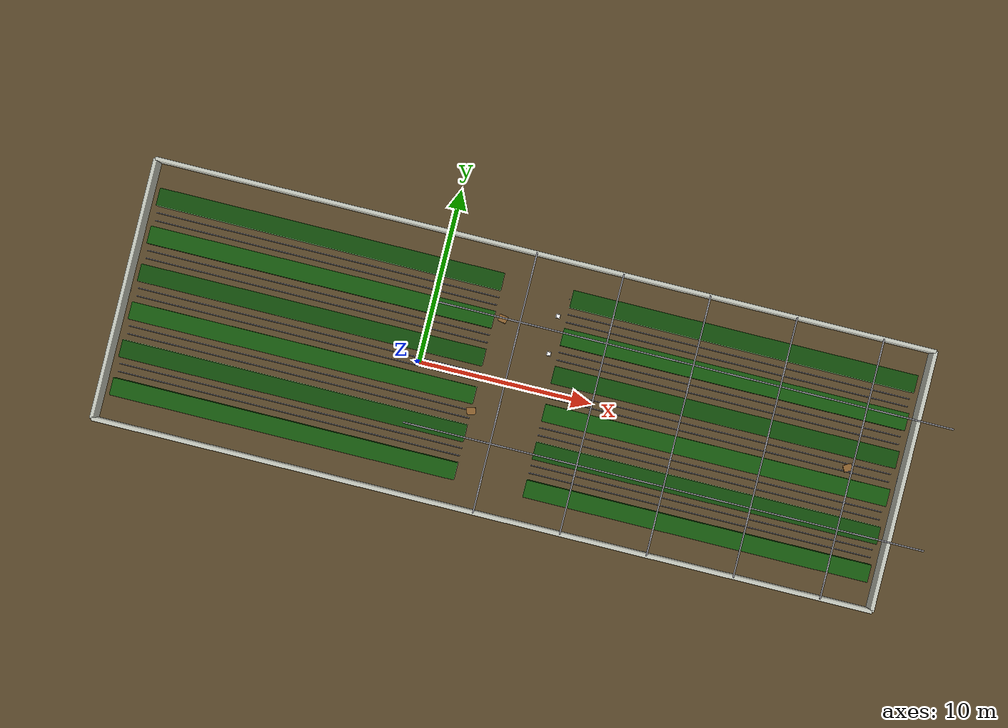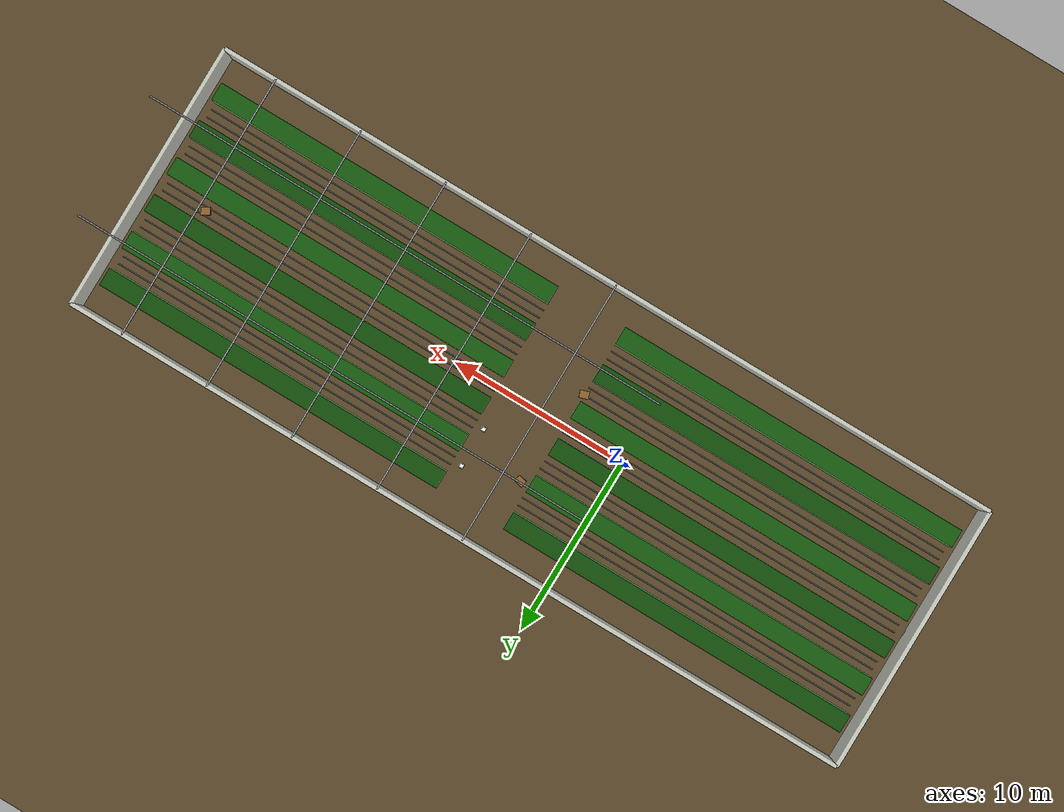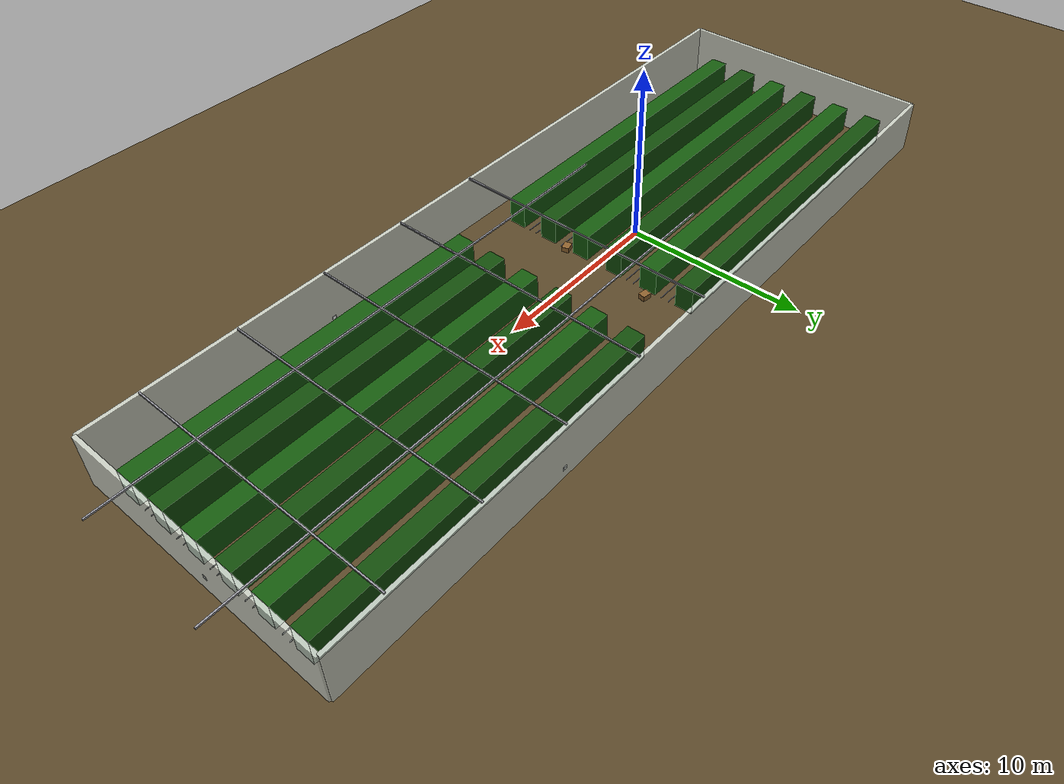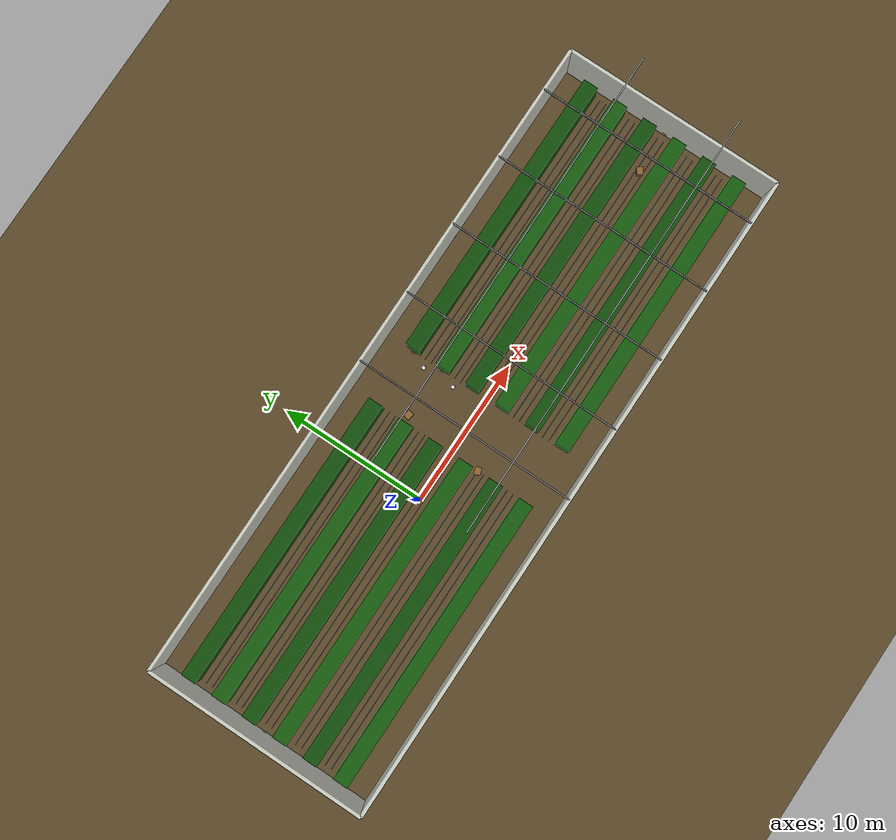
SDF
<sdf version="1.9">
 <world name="greenhouse_simple">
  <plugin filename="gz-sim-physics-system" name="gz::sim::systems::Physics"/>
  <plugin filename="gz-sim-user-commands-system" name="gz::sim::systems::UserCommands"/>
  <plugin filename="gz-sim-scene-broadcaster-system" name="gz::sim::systems::SceneBroadcaster"/>
  <plugin filename="gz-sim-sensors-system" name="gz::sim::systems::Sensors">
   <render_engine>ogre2</render_engine>
  </plugin>
  <plugin filename="gz-sim-imu-system" name="gz::sim::systems::Imu"/>
  <plugin filename="gz-sim-contact-system" name="gz::sim::systems::Contact"/>
  <physics name="default" type="dart">
   <max_step_size>0.004</max_step_size>
   <real_time_factor>1.0</real_time_factor>
   <real_time_update_rate>250</real_time_update_rate>
  </physics>
  <light type="directional" name="sun">
   <cast_shadows>false</cast_shadows>
   <pose>0 0 10 0 0 0</pose>
   <diffuse>1.0 1.0 0.95 1</diffuse>
   <specular>0.3 0.3 0.3 1</specular>
   <attenuation>
    <range>1000</range>
    <constant>0.9</constant>
    <linear>0.01</linear>
    <quadratic>0.001</quadratic>
   </attenuation>
   <direction>-0.5 0.1 -0.9</direction>
  </light>
  <light type="directional" name="fill">
   <cast_shadows>false</cast_shadows>
   <pose>0 0 10 0 0 0</pose>
   <diffuse>0.4 0.4 0.45 1</diffuse>
   <specular>0.05 0.05 0.05 1</specular>
   <direction>0.5 -0.3 -0.7</direction>
  </light>
  <light type="directional" name="ambient_bounce">
   <cast_shadows>false</cast_shadows>
   <pose>0 0 10 0 0 0</pose>
   <diffuse>0.25 0.25 0.25 1</diffuse>
   <specular>0.0 0.0 0.0 1</specular>
   <direction>0.0 0.0 -1.0</direction>
  </light>
  <model name="ground_plane">
   <static>true</static>
   <pose>5.5 0 0 0 0 0</pose>
   <link name="ground_link">
    <collision name="ground_collision">
     <geometry><plane><normal>0 0 1</normal><size>49 19</size></plane></geometry>
    </collision>
    <visual name="ground_visual">
     <geometry><plane><normal>0 0 1</normal><size>49 19</size></plane></geometry>
     <material>
      <ambient>0.25 0.2 0.12 1</ambient>
      <diffuse>0.35 0.28 0.16 1</diffuse>
      <specular>0.05 0.04 0.03 1</specular>
      <pbr>
       <metal>
        <albedo_map>model://textures/ground_soil.png</albedo_map>
        <metalness>0.0</metalness>
        <roughness>0.95</roughness>
       </metal>
      </pbr>
     </material>
    </visual>
   </link>
  </model>
  <model name="wall_north">
   <static>true</static>
   <pose>5.5 7.5 1.5 0 0 0</pose>
   <link name="wall_link">
    <collision name="col"><geometry><box><size>45.0 0.2 3.0</size></box></geometry></collision>
    <visual name="vis">
     <geometry><box><size>45.0 0.2 3.0</size></box></geometry>
     <material>
      <ambient>0.85 0.88 0.85 0.85</ambient>
      <diffuse>0.9 0.93 0.9 0.85</diffuse>
      <specular>0.1 0.1 0.1 1</specular>
      <pbr>
       <metal>
        <albedo_map>model://textures/wall_polycarbonate.png</albedo_map>
        <metalness>0.0</metalness>
        <roughness>0.85</roughness>
       </metal>
      </pbr>
     </material>
    </visual>
   </link>
  </model>
  <model name="wall_south">
   <static>true</static>
   <pose>5.5 -7.5 1.5 0 0 0</pose>
   <link name="wall_link">
    <collision name="col"><geometry><box><size>45.0 0.2 3.0</size></box></geometry></collision>
    <visual name="vis">
     <geometry><box><size>45.0 0.2 3.0</size></box></geometry>
     <material>
      <ambient>0.85 0.88 0.85 0.85</ambient>
      <diffuse>0.9 0.93 0.9 0.85</diffuse>
      <specular>0.1 0.1 0.1 1</specular>
      <pbr>
       <metal>
        <albedo_map>model://textures/wall_polycarbonate.png</albedo_map>
        <metalness>0.0</metalness>
        <roughness>0.85</roughness>
       </metal>
      </pbr>
     </material>
    </visual>
   </link>
  </model>
  <model name="wall_west">
   <static>true</static>
   <pose>-17.0 0 1.5 0 0 0</pose>
   <link name="wall_link">
    <collision name="col"><geometry><box><size>0.2 15 3.0</size></box></geometry></collision>
    <visual name="vis">
     <geometry><box><size>0.2 15 3.0</size></box></geometry>
     <material>
      <ambient>0.85 0.88 0.85 0.85</ambient>
      <diffuse>0.9 0.93 0.9 0.85</diffuse>
      <specular>0.1 0.1 0.1 1</specular>
      <pbr>
       <metal>
        <albedo_map>model://textures/wall_polycarbonate.png</albedo_map>
        <metalness>0.0</metalness>
        <roughness>0.85</roughness>
       </metal>
      </pbr>
     </material>
    </visual>
   </link>
  </model>
  <model name="wall_east">
   <static>true</static>
   <pose>28.0 0 1.5 0 0 0</pose>
   <link name="wall_link">
    <collision name="col"><geometry><box><size>0.2 15 3.0</size></box></geometry></collision>
    <visual name="vis">
     <geometry><box><size>0.2 15 3.0</size></box></geometry>
     <material>
      <ambient>0.85 0.88 0.85 0.85</ambient>
      <diffuse>0.9 0.93 0.9 0.85</diffuse>
      <specular>0.1 0.1 0.1 1</specular>
      <pbr>
       <metal>
        <albedo_map>model://textures/wall_polycarbonate.png</albedo_map>
        <metalness>0.0</metalness>
        <roughness>0.85</roughness>
       </metal>
      </pbr>
     </material>
    </visual>
   </link>
  </model>
  <model name="roof_beam_t1">
   <static>true</static>
   <pose>5 0 3.0 0 0 0</pose>
   <link name="beam_link">
    <visual name="vis">
     <geometry><box><size>0.08 15 0.08</size></box></geometry>
     <material>
      <ambient>0.5 0.5 0.52 1</ambient>
      <diffuse>0.6 0.6 0.63 1</diffuse>
      <specular>0.15 0.15 0.15 1</specular>
      <pbr><metal><metalness>0.2</metalness><roughness>0.7</roughness></metal></pbr>
     </material>
    </visual>
   </link>
  </model>
  <model name="roof_beam_t2">
   <static>true</static>
   <pose>10 0 3.0 0 0 0</pose>
   <link name="beam_link">
    <visual name="vis">
     <geometry><box><size>0.08 15 0.08</size></box></geometry>
     <material>
      <ambient>0.5 0.5 0.52 1</ambient>
      <diffuse>0.6 0.6 0.63 1</diffuse>
      <specular>0.15 0.15 0.15 1</specular>
      <pbr><metal><metalness>0.2</metalness><roughness>0.7</roughness></metal></pbr>
     </material>
    </visual>
   </link>
  </model>
  <model name="roof_beam_t3">
   <static>true</static>
   <pose>15 0 3.0 0 0 0</pose>
   <link name="beam_link">
    <visual name="vis">
     <geometry><box><size>0.08 15 0.08</size></box></geometry>
     <material>
      <ambient>0.5 0.5 0.52 1</ambient>
      <diffuse>0.6 0.6 0.63 1</diffuse>
      <specular>0.15 0.15 0.15 1</specular>
      <pbr><metal><metalness>0.2</metalness><roughness>0.7</roughness></metal></pbr>
     </material>
    </visual>
   </link>
  </model>
  <model name="roof_beam_t4">
   <static>true</static>
   <pose>20 0 3.0 0 0 0</pose>
   <link name="beam_link">
    <visual name="vis">
     <geometry><box><size>0.08 15 0.08</size></box></geometry>
     <material>
      <ambient>0.5 0.5 0.52 1</ambient>
      <diffuse>0.6 0.6 0.63 1</diffuse>
      <specular>0.15 0.15 0.15 1</specular>
      <pbr><metal><metalness>0.2</metalness><roughness>0.7</roughness></metal></pbr>
     </material>
    </visual>
   </link>
  </model>
  <model name="roof_beam_t5">
   <static>true</static>
   <pose>25 0 3.0 0 0 0</pose>
   <link name="beam_link">
    <visual name="vis">
     <geometry><box><size>0.08 15 0.08</size></box></geometry>
     <material>
      <ambient>0.5 0.5 0.52 1</ambient>
      <diffuse>0.6 0.6 0.63 1</diffuse>
      <specular>0.15 0.15 0.15 1</specular>
      <pbr><metal><metalness>0.2</metalness><roughness>0.7</roughness></metal></pbr>
     </material>
    </visual>
   </link>
  </model>
  <model name="roof_beam_l1">
   <static>true</static>
   <pose>15 -3.5 3.0 0 0 0</pose>
   <link name="beam_link">
    <visual name="vis">
     <geometry><box><size>30 0.08 0.08</size></box></geometry>
     <material>
      <ambient>0.5 0.5 0.52 1</ambient>
      <diffuse>0.6 0.6 0.63 1</diffuse>
      <specular>0.15 0.15 0.15 1</specular>
      <pbr><metal><metalness>0.2</metalness><roughness>0.7</roughness></metal></pbr>
     </material>
    </visual>
   </link>
  </model>
  <model name="roof_beam_l2">
   <static>true</static>
   <pose>15 3.5 3.0 0 0 0</pose>
   <link name="beam_link">
    <visual name="vis">
     <geometry><box><size>30 0.08 0.08</size></box></geometry>
     <material>
      <ambient>0.5 0.5 0.52 1</ambient>
      <diffuse>0.6 0.6 0.63 1</diffuse>
      <specular>0.15 0.15 0.15 1</specular>
      <pbr><metal><metalness>0.2</metalness><roughness>0.7</roughness></metal></pbr>
     </material>
    </visual>
   </link>
  </model>
  <model name="crop_row_1">
   <static>true</static>
   <pose>17.5 -5.5 0.75 0 0 0</pose>
   <link name="row_link">
    <collision name="col"><geometry><box><size>20 1.0 1.5</size></box></geometry></collision>
    <visual name="vis">
     <geometry><box><size>20 1.0 1.5</size></box></geometry>
     <material>
      <ambient>0.05 0.25 0.03 1</ambient>
      <diffuse>0.08 0.35 0.05 1</diffuse>
      <specular>0.02 0.05 0.02 1</specular>
      <pbr>
       <metal>
        <albedo_map>model://textures/crop_leaves.png</albedo_map>
        <metalness>0.0</metalness>
        <roughness>0.88</roughness>
       </metal>
      </pbr>
     </material>
    </visual>
   </link>
  </model>
  <model name="crop_row_2">
   <static>true</static>
   <pose>17.5 -3.3 0.75 0 0 0</pose>
   <link name="row_link">
    <collision name="col"><geometry><box><size>20 1.0 1.5</size></box></geometry></collision>
    <visual name="vis">
     <geometry><box><size>20 1.0 1.5</size></box></geometry>
     <material>
      <ambient>0.04 0.22 0.03 1</ambient>
      <diffuse>0.07 0.30 0.04 1</diffuse>
      <specular>0.02 0.04 0.02 1</specular>
      <pbr>
       <metal>
        <albedo_map>model://textures/crop_leaves_alt.png</albedo_map>
        <metalness>0.0</metalness>
        <roughness>0.90</roughness>
       </metal>
      </pbr>
     </material>
    </visual>
   </link>
  </model>
  <model name="crop_row_3">
   <static>true</static>
   <pose>17.5 -1.1 0.75 0 0 0</pose>
   <link name="row_link">
    <collision name="col"><geometry><box><size>20 1.0 1.5</size></box></geometry></collision>
    <visual name="vis">
     <geometry><box><size>20 1.0 1.5</size></box></geometry>
     <material>
      <ambient>0.05 0.25 0.03 1</ambient>
      <diffuse>0.08 0.35 0.05 1</diffuse>
      <specular>0.02 0.05 0.02 1</specular>
      <pbr>
       <metal>
        <albedo_map>model://textures/crop_leaves.png</albedo_map>
        <metalness>0.0</metalness>
        <roughness>0.88</roughness>
       </metal>
      </pbr>
     </material>
    </visual>
   </link>
  </model>
  <model name="crop_row_4">
   <static>true</static>
   <pose>17.5 1.1 0.75 0 0 0</pose>
   <link name="row_link">
    <collision name="col"><geometry><box><size>20 1.0 1.5</size></box></geometry></collision>
    <visual name="vis">
     <geometry><box><size>20 1.0 1.5</size></box></geometry>
     <material>
      <ambient>0.04 0.22 0.03 1</ambient>
      <diffuse>0.07 0.30 0.04 1</diffuse>
      <specular>0.02 0.04 0.02 1</specular>
      <pbr>
       <metal>
        <albedo_map>model://textures/crop_leaves_alt.png</albedo_map>
        <metalness>0.0</metalness>
        <roughness>0.90</roughness>
       </metal>
      </pbr>
     </material>
    </visual>
   </link>
  </model>
  <model name="crop_row_5">
   <static>true</static>
   <pose>17.5 3.3 0.75 0 0 0</pose>
   <link name="row_link">
    <collision name="col"><geometry><box><size>20 1.0 1.5</size></box></geometry></collision>
    <visual name="vis">
     <geometry><box><size>20 1.0 1.5</size></box></geometry>
     <material>
      <ambient>0.05 0.25 0.03 1</ambient>
      <diffuse>0.08 0.35 0.05 1</diffuse>
      <specular>0.02 0.05 0.02 1</specular>
      <pbr>
       <metal>
        <albedo_map>model://textures/crop_leaves.png</albedo_map>
        <metalness>0.0</metalness>
        <roughness>0.88</roughness>
       </metal>
      </pbr>
     </material>
    </visual>
   </link>
  </model>
  <model name="crop_row_6">
   <static>true</static>
   <pose>17.5 5.5 0.75 0 0 0</pose>
   <link name="row_link">
    <collision name="col"><geometry><box><size>20 1.0 1.5</size></box></geometry></collision>
    <visual name="vis">
     <geometry><box><size>20 1.0 1.5</size></box></geometry>
     <material>
      <ambient>0.04 0.22 0.03 1</ambient>
      <diffuse>0.07 0.30 0.04 1</diffuse>
      <specular>0.02 0.04 0.02 1</specular>
      <pbr>
       <metal>
        <albedo_map>model://textures/crop_leaves_alt.png</albedo_map>
        <metalness>0.0</metalness>
        <roughness>0.90</roughness>
       </metal>
      </pbr>
     </material>
    </visual>
   </link>
  </model>
  <model name="crop_row_r1">
   <static>true</static>
   <pose>-6.5 -5.5 0.75 0 0 0</pose>
   <link name="row_link">
    <collision name="col"><geometry><box><size>20 1.0 1.5</size></box></geometry></collision>
    <visual name="vis">
     <geometry><box><size>20 1.0 1.5</size></box></geometry>
     <material>
      <ambient>0.05 0.25 0.03 1</ambient>
      <diffuse>0.08 0.35 0.05 1</diffuse>
      <specular>0.02 0.05 0.02 1</specular>
      <pbr>
       <metal>
        <albedo_map>model://textures/crop_leaves.png</albedo_map>
        <metalness>0.0</metalness>
        <roughness>0.88</roughness>
       </metal>
      </pbr>
     </material>
    </visual>
   </link>
  </model>
  <model name="crop_row_r2">
   <static>true</static>
   <pose>-6.5 -3.3 0.75 0 0 0</pose>
   <link name="row_link">
    <collision name="col"><geometry><box><size>20 1.0 1.5</size></box></geometry></collision>
    <visual name="vis">
     <geometry><box><size>20 1.0 1.5</size></box></geometry>
     <material>
      <ambient>0.04 0.22 0.03 1</ambient>
      <diffuse>0.07 0.30 0.04 1</diffuse>
      <specular>0.02 0.04 0.02 1</specular>
      <pbr>
       <metal>
        <albedo_map>model://textures/crop_leaves_alt.png</albedo_map>
        <metalness>0.0</metalness>
        <roughness>0.90</roughness>
       </metal>
      </pbr>
     </material>
    </visual>
   </link>
  </model>
  <model name="crop_row_r3">
   <static>true</static>
   <pose>-6.5 -1.1 0.75 0 0 0</pose>
   <link name="row_link">
    <collision name="col"><geometry><box><size>20 1.0 1.5</size></box></geometry></collision>
    <visual name="vis">
     <geometry><box><size>20 1.0 1.5</size></box></geometry>
     <material>
      <ambient>0.05 0.25 0.03 1</ambient>
      <diffuse>0.08 0.35 0.05 1</diffuse>
      <specular>0.02 0.05 0.02 1</specular>
      <pbr>
       <metal>
        <albedo_map>model://textures/crop_leaves.png</albedo_map>
        <metalness>0.0</metalness>
        <roughness>0.88</roughness>
       </metal>
      </pbr>
     </material>
    </visual>
   </link>
  </model>
  <model name="crop_row_r4">
   <static>true</static>
   <pose>-6.5 1.1 0.75 0 0 0</pose>
   <link name="row_link">
    <collision name="col"><geometry><box><size>20 1.0 1.5</size></box></geometry></collision>
    <visual name="vis">
     <geometry><box><size>20 1.0 1.5</size></box></geometry>
     <material>
      <ambient>0.04 0.22 0.03 1</ambient>
      <diffuse>0.07 0.30 0.04 1</diffuse>
      <specular>0.02 0.04 0.02 1</specular>
      <pbr>
       <metal>
        <albedo_map>model://textures/crop_leaves_alt.png</albedo_map>
        <metalness>0.0</metalness>
        <roughness>0.90</roughness>
       </metal>
      </pbr>
     </material>
    </visual>
   </link>
  </model>
  <model name="crop_row_r5">
   <static>true</static>
   <pose>-6.5 3.3 0.75 0 0 0</pose>
   <link name="row_link">
    <collision name="col"><geometry><box><size>20 1.0 1.5</size></box></geometry></collision>
    <visual name="vis">
     <geometry><box><size>20 1.0 1.5</size></box></geometry>
     <material>
      <ambient>0.05 0.25 0.03 1</ambient>
      <diffuse>0.08 0.35 0.05 1</diffuse>
      <specular>0.02 0.05 0.02 1</specular>
      <pbr>
       <metal>
        <albedo_map>model://textures/crop_leaves.png</albedo_map>
        <metalness>0.0</metalness>
        <roughness>0.88</roughness>
       </metal>
      </pbr>
     </material>
    </visual>
   </link>
  </model>
  <model name="crop_row_r6">
   <static>true</static>
   <pose>-6.5 5.5 0.75 0 0 0</pose>
   <link name="row_link">
    <collision name="col"><geometry><box><size>20 1.0 1.5</size></box></geometry></collision>
    <visual name="vis">
     <geometry><box><size>20 1.0 1.5</size></box></geometry>
     <material>
      <ambient>0.04 0.22 0.03 1</ambient>
      <diffuse>0.07 0.30 0.04 1</diffuse>
      <specular>0.02 0.04 0.02 1</specular>
      <pbr>
       <metal>
        <albedo_map>model://textures/crop_leaves_alt.png</albedo_map>
        <metalness>0.0</metalness>
        <roughness>0.90</roughness>
       </metal>
      </pbr>
     </material>
    </visual>
   </link>
  </model>
  <model name="crate_1">
   <static>true</static>
   <pose>3.5 -2.0 0.15 0 0 0.3</pose>
   <link name="crate_link">
    <collision name="col"><geometry><box><size>0.5 0.4 0.3</size></box></geometry></collision>
    <visual name="vis">
     <geometry><box><size>0.5 0.4 0.3</size></box></geometry>
     <material>
      <ambient>0.4 0.28 0.12 1</ambient>
      <diffuse>0.55 0.38 0.18 1</diffuse>
      <specular>0.1 0.08 0.05 1</specular>
      <pbr>
       <metal>
        <albedo_map>model://textures/crate_wood.png</albedo_map>
        <metalness>0.0</metalness>
        <roughness>0.85</roughness>
       </metal>
      </pbr>
     </material>
    </visual>
   </link>
  </model>
  <model name="crate_2">
   <static>true</static>
   <pose>4.0 3.5 0.15 0 0 -0.2</pose>
   <link name="crate_link">
    <collision name="col"><geometry><box><size>0.5 0.4 0.3</size></box></geometry></collision>
    <visual name="vis">
     <geometry><box><size>0.5 0.4 0.3</size></box></geometry>
     <material>
      <ambient>0.4 0.28 0.12 1</ambient>
      <diffuse>0.55 0.38 0.18 1</diffuse>
      <specular>0.1 0.08 0.05 1</specular>
      <pbr>
       <metal>
        <albedo_map>model://textures/crate_wood.png</albedo_map>
        <metalness>0.0</metalness>
        <roughness>0.85</roughness>
       </metal>
      </pbr>
     </material>
    </visual>
   </link>
  </model>
  <model name="crate_3">
   <static>true</static>
   <pose>25.0 0.0 0.15 0 0 0.5</pose>
   <link name="crate_link">
    <collision name="col"><geometry><box><size>0.5 0.4 0.3</size></box></geometry></collision>
    <visual name="vis">
     <geometry><box><size>0.5 0.4 0.3</size></box></geometry>
     <material>
      <ambient>0.4 0.28 0.12 1</ambient>
      <diffuse>0.55 0.38 0.18 1</diffuse>
      <specular>0.1 0.08 0.05 1</specular>
      <pbr>
       <metal>
        <albedo_map>model://textures/crate_wood.png</albedo_map>
        <metalness>0.0</metalness>
        <roughness>0.85</roughness>
       </metal>
      </pbr>
     </material>
    </visual>
   </link>
  </model>
  <model name="heating_rail_1_2_left">
   <static>true</static>
   <pose>17.5 -4.625 0.0255 0 1.5708 0</pose>
   <link name="rail_link">
    <collision name="col">
     <geometry><cylinder><radius>0.0255</radius><length>20.0</length></cylinder></geometry>
    </collision>
    <visual name="vis">
     <geometry><cylinder><radius>0.0255</radius><length>20.0</length></cylinder></geometry>
     <material>
      <ambient>0.55 0.55 0.58 1</ambient>
      <diffuse>0.65 0.65 0.70 1</diffuse>
      <specular>0.2 0.2 0.2 1</specular>
      <pbr>
       <metal>
        <albedo_map>model://textures/rail_steel.png</albedo_map>
        <metalness>0.3</metalness>
        <roughness>0.65</roughness>
       </metal>
      </pbr>
     </material>
    </visual>
   </link>
  </model>
  <model name="heating_rail_1_2_right">
   <static>true</static>
   <pose>17.5 -4.175 0.0255 0 1.5708 0</pose>
   <link name="rail_link">
    <collision name="col">
     <geometry><cylinder><radius>0.0255</radius><length>20.0</length></cylinder></geometry>
    </collision>
    <visual name="vis">
     <geometry><cylinder><radius>0.0255</radius><length>20.0</length></cylinder></geometry>
     <material>
      <ambient>0.55 0.55 0.58 1</ambient>
      <diffuse>0.65 0.65 0.70 1</diffuse>
      <specular>0.2 0.2 0.2 1</specular>
      <pbr>
       <metal>
        <albedo_map>model://textures/rail_steel.png</albedo_map>
        <metalness>0.3</metalness>
        <roughness>0.65</roughness>
       </metal>
      </pbr>
     </material>
    </visual>
   </link>
  </model>
  <model name="heating_rail_2_3_left">
   <static>true</static>
   <pose>17.5 -2.425 0.0255 0 1.5708 0</pose>
   <link name="rail_link">
    <collision name="col">
     <geometry><cylinder><radius>0.0255</radius><length>20.0</length></cylinder></geometry>
    </collision>
    <visual name="vis">
     <geometry><cylinder><radius>0.0255</radius><length>20.0</length></cylinder></geometry>
     <material>
      <ambient>0.55 0.55 0.58 1</ambient>
      <diffuse>0.65 0.65 0.70 1</diffuse>
      <specular>0.2 0.2 0.2 1</specular>
      <pbr>
       <metal>
        <albedo_map>model://textures/rail_steel.png</albedo_map>
        <metalness>0.3</metalness>
        <roughness>0.65</roughness>
       </metal>
      </pbr>
     </material>
    </visual>
   </link>
  </model>
  <model name="heating_rail_2_3_right">
   <static>true</static>
   <pose>17.5 -1.975 0.0255 0 1.5708 0</pose>
   <link name="rail_link">
    <collision name="col">
     <geometry><cylinder><radius>0.0255</radius><length>20.0</length></cylinder></geometry>
    </collision>
    <visual name="vis">
     <geometry><cylinder><radius>0.0255</radius><length>20.0</length></cylinder></geometry>
     <material>
      <ambient>0.55 0.55 0.58 1</ambient>
      <diffuse>0.65 0.65 0.70 1</diffuse>
      <specular>0.2 0.2 0.2 1</specular>
      <pbr>
       <metal>
        <albedo_map>model://textures/rail_steel.png</albedo_map>
        <metalness>0.3</metalness>
        <roughness>0.65</roughness>
       </metal>
      </pbr>
     </material>
    </visual>
   </link>
  </model>
  <model name="heating_rail_3_4_left">
   <static>true</static>
   <pose>17.5 -0.225 0.0255 0 1.5708 0</pose>
   <link name="rail_link">
    <collision name="col">
     <geometry><cylinder><radius>0.0255</radius><length>20.0</length></cylinder></geometry>
    </collision>
    <visual name="vis">
     <geometry><cylinder><radius>0.0255</radius><length>20.0</length></cylinder></geometry>
     <material>
      <ambient>0.55 0.55 0.58 1</ambient>
      <diffuse>0.65 0.65 0.70 1</diffuse>
      <specular>0.2 0.2 0.2 1</specular>
      <pbr>
       <metal>
        <albedo_map>model://textures/rail_steel.png</albedo_map>
        <metalness>0.3</metalness>
        <roughness>0.65</roughness>
       </metal>
      </pbr>
     </material>
    </visual>
   </link>
  </model>
  <model name="heating_rail_3_4_right">
   <static>true</static>
   <pose>17.5 0.225 0.0255 0 1.5708 0</pose>
   <link name="rail_link">
    <collision name="col">
     <geometry><cylinder><radius>0.0255</radius><length>20.0</length></cylinder></geometry>
    </collision>
    <visual name="vis">
     <geometry><cylinder><radius>0.0255</radius><length>20.0</length></cylinder></geometry>
     <material>
      <ambient>0.55 0.55 0.58 1</ambient>
      <diffuse>0.65 0.65 0.70 1</diffuse>
      <specular>0.2 0.2 0.2 1</specular>
      <pbr>
       <metal>
        <albedo_map>model://textures/rail_steel.png</albedo_map>
        <metalness>0.3</metalness>
        <roughness>0.65</roughness>
       </metal>
      </pbr>
     </material>
    </visual>
   </link>
  </model>
  <model name="heating_rail_4_5_left">
   <static>true</static>
   <pose>17.5 1.975 0.0255 0 1.5708 0</pose>
   <link name="rail_link">
    <collision name="col">
     <geometry><cylinder><radius>0.0255</radius><length>20.0</length></cylinder></geometry>
    </collision>
    <visual name="vis">
     <geometry><cylinder><radius>0.0255</radius><length>20.0</length></cylinder></geometry>
     <material>
      <ambient>0.55 0.55 0.58 1</ambient>
      <diffuse>0.65 0.65 0.70 1</diffuse>
      <specular>0.2 0.2 0.2 1</specular>
      <pbr>
       <metal>
        <albedo_map>model://textures/rail_steel.png</albedo_map>
        <metalness>0.3</metalness>
        <roughness>0.65</roughness>
       </metal>
      </pbr>
     </material>
    </visual>
   </link>
  </model>
  <model name="heating_rail_4_5_right">
   <static>true</static>
   <pose>17.5 2.425 0.0255 0 1.5708 0</pose>
   <link name="rail_link">
    <collision name="col">
     <geometry><cylinder><radius>0.0255</radius><length>20.0</length></cylinder></geometry>
    </collision>
    <visual name="vis">
     <geometry><cylinder><radius>0.0255</radius><length>20.0</length></cylinder></geometry>
     <material>
      <ambient>0.55 0.55 0.58 1</ambient>
      <diffuse>0.65 0.65 0.70 1</diffuse>
      <specular>0.2 0.2 0.2 1</specular>
      <pbr>
       <metal>
        <albedo_map>model://textures/rail_steel.png</albedo_map>
        <metalness>0.3</metalness>
        <roughness>0.65</roughness>
       </metal>
      </pbr>
     </material>
    </visual>
   </link>
  </model>
  <model name="heating_rail_5_6_left">
   <static>true</static>
   <pose>17.5 4.175 0.0255 0 1.5708 0</pose>
   <link name="rail_link">
    <collision name="col">
     <geometry><cylinder><radius>0.0255</radius><length>20.0</length></cylinder></geometry>
    </collision>
    <visual name="vis">
     <geometry><cylinder><radius>0.0255</radius><length>20.0</length></cylinder></geometry>
     <material>
      <ambient>0.55 0.55 0.58 1</ambient>
      <diffuse>0.65 0.65 0.70 1</diffuse>
      <specular>0.2 0.2 0.2 1</specular>
      <pbr>
       <metal>
        <albedo_map>model://textures/rail_steel.png</albedo_map>
        <metalness>0.3</metalness>
        <roughness>0.65</roughness>
       </metal>
      </pbr>
     </material>
    </visual>
   </link>
  </model>
  <model name="heating_rail_5_6_right">
   <static>true</static>
   <pose>17.5 4.625 0.0255 0 1.5708 0</pose>
   <link name="rail_link">
    <collision name="col">
     <geometry><cylinder><radius>0.0255</radius><length>20.0</length></cylinder></geometry>
    </collision>
    <visual name="vis">
     <geometry><cylinder><radius>0.0255</radius><length>20.0</length></cylinder></geometry>
     <material>
      <ambient>0.55 0.55 0.58 1</ambient>
      <diffuse>0.65 0.65 0.70 1</diffuse>
      <specular>0.2 0.2 0.2 1</specular>
      <pbr>
       <metal>
        <albedo_map>model://textures/rail_steel.png</albedo_map>
        <metalness>0.3</metalness>
        <roughness>0.65</roughness>
       </metal>
      </pbr>
     </material>
    </visual>
   </link>
  </model>
  <model name="heating_rail_r1_2_left">
   <static>true</static>
   <pose>-6.5 -4.625 0.0255 0 1.5708 0</pose>
   <link name="rail_link">
    <collision name="col">
     <geometry><cylinder><radius>0.0255</radius><length>20.0</length></cylinder></geometry>
    </collision>
    <visual name="vis">
     <geometry><cylinder><radius>0.0255</radius><length>20.0</length></cylinder></geometry>
     <material>
      <ambient>0.55 0.55 0.58 1</ambient>
      <diffuse>0.65 0.65 0.70 1</diffuse>
      <specular>0.2 0.2 0.2 1</specular>
      <pbr>
       <metal>
        <albedo_map>model://textures/rail_steel.png</albedo_map>
        <metalness>0.3</metalness>
        <roughness>0.65</roughness>
       </metal>
      </pbr>
     </material>
    </visual>
   </link>
  </model>
  <model name="heating_rail_r1_2_right">
   <static>true</static>
   <pose>-6.5 -4.175 0.0255 0 1.5708 0</pose>
   <link name="rail_link">
    <collision name="col">
     <geometry><cylinder><radius>0.0255</radius><length>20.0</length></cylinder></geometry>
    </collision>
    <visual name="vis">
     <geometry><cylinder><radius>0.0255</radius><length>20.0</length></cylinder></geometry>
     <material>
      <ambient>0.55 0.55 0.58 1</ambient>
      <diffuse>0.65 0.65 0.70 1</diffuse>
      <specular>0.2 0.2 0.2 1</specular>
      <pbr>
       <metal>
        <albedo_map>model://textures/rail_steel.png</albedo_map>
        <metalness>0.3</metalness>
        <roughness>0.65</roughness>
       </metal>
      </pbr>
     </material>
    </visual>
   </link>
  </model>
  <model name="heating_rail_r2_3_left">
   <static>true</static>
   <pose>-6.5 -2.425 0.0255 0 1.5708 0</pose>
   <link name="rail_link">
    <collision name="col">
     <geometry><cylinder><radius>0.0255</radius><length>20.0</length></cylinder></geometry>
    </collision>
    <visual name="vis">
     <geometry><cylinder><radius>0.0255</radius><length>20.0</length></cylinder></geometry>
     <material>
      <ambient>0.55 0.55 0.58 1</ambient>
      <diffuse>0.65 0.65 0.70 1</diffuse>
      <specular>0.2 0.2 0.2 1</specular>
      <pbr>
       <metal>
        <albedo_map>model://textures/rail_steel.png</albedo_map>
        <metalness>0.3</metalness>
        <roughness>0.65</roughness>
       </metal>
      </pbr>
     </material>
    </visual>
   </link>
  </model>
  <model name="heating_rail_r2_3_right">
   <static>true</static>
   <pose>-6.5 -1.975 0.0255 0 1.5708 0</pose>
   <link name="rail_link">
    <collision name="col">
     <geometry><cylinder><radius>0.0255</radius><length>20.0</length></cylinder></geometry>
    </collision>
    <visual name="vis">
     <geometry><cylinder><radius>0.0255</radius><length>20.0</length></cylinder></geometry>
     <material>
      <ambient>0.55 0.55 0.58 1</ambient>
      <diffuse>0.65 0.65 0.70 1</diffuse>
      <specular>0.2 0.2 0.2 1</specular>
      <pbr>
       <metal>
        <albedo_map>model://textures/rail_steel.png</albedo_map>
        <metalness>0.3</metalness>
        <roughness>0.65</roughness>
       </metal>
      </pbr>
     </material>
    </visual>
   </link>
  </model>
  <model name="heating_rail_r3_4_left">
   <static>true</static>
   <pose>-6.5 -0.225 0.0255 0 1.5708 0</pose>
   <link name="rail_link">
    <collision name="col">
     <geometry><cylinder><radius>0.0255</radius><length>20.0</length></cylinder></geometry>
    </collision>
    <visual name="vis">
     <geometry><cylinder><radius>0.0255</radius><length>20.0</length></cylinder></geometry>
     <material>
      <ambient>0.55 0.55 0.58 1</ambient>
      <diffuse>0.65 0.65 0.70 1</diffuse>
      <specular>0.2 0.2 0.2 1</specular>
      <pbr>
       <metal>
        <albedo_map>model://textures/rail_steel.png</albedo_map>
        <metalness>0.3</metalness>
        <roughness>0.65</roughness>
       </metal>
      </pbr>
     </material>
    </visual>
   </link>
  </model>
  <model name="heating_rail_r3_4_right">
   <static>true</static>
   <pose>-6.5 0.225 0.0255 0 1.5708 0</pose>
   <link name="rail_link">
    <collision name="col">
     <geometry><cylinder><radius>0.0255</radius><length>20.0</length></cylinder></geometry>
    </collision>
    <visual name="vis">
     <geometry><cylinder><radius>0.0255</radius><length>20.0</length></cylinder></geometry>
     <material>
      <ambient>0.55 0.55 0.58 1</ambient>
      <diffuse>0.65 0.65 0.70 1</diffuse>
      <specular>0.2 0.2 0.2 1</specular>
      <pbr>
       <metal>
        <albedo_map>model://textures/rail_steel.png</albedo_map>
        <metalness>0.3</metalness>
        <roughness>0.65</roughness>
       </metal>
      </pbr>
     </material>
    </visual>
   </link>
  </model>
  <model name="heating_rail_r4_5_left">
   <static>true</static>
   <pose>-6.5 1.975 0.0255 0 1.5708 0</pose>
   <link name="rail_link">
    <collision name="col">
     <geometry><cylinder><radius>0.0255</radius><length>20.0</length></cylinder></geometry>
    </collision>
    <visual name="vis">
     <geometry><cylinder><radius>0.0255</radius><length>20.0</length></cylinder></geometry>
     <material>
      <ambient>0.55 0.55 0.58 1</ambient>
      <diffuse>0.65 0.65 0.70 1</diffuse>
      <specular>0.2 0.2 0.2 1</specular>
      <pbr>
       <metal>
        <albedo_map>model://textures/rail_steel.png</albedo_map>
        <metalness>0.3</metalness>
        <roughness>0.65</roughness>
       </metal>
      </pbr>
     </material>
    </visual>
   </link>
  </model>
  <model name="heating_rail_r4_5_right">
   <static>true</static>
   <pose>-6.5 2.425 0.0255 0 1.5708 0</pose>
   <link name="rail_link">
    <collision name="col">
     <geometry><cylinder><radius>0.0255</radius><length>20.0</length></cylinder></geometry>
    </collision>
    <visual name="vis">
     <geometry><cylinder><radius>0.0255</radius><length>20.0</length></cylinder></geometry>
     <material>
      <ambient>0.55 0.55 0.58 1</ambient>
      <diffuse>0.65 0.65 0.70 1</diffuse>
      <specular>0.2 0.2 0.2 1</specular>
      <pbr>
       <metal>
        <albedo_map>model://textures/rail_steel.png</albedo_map>
        <metalness>0.3</metalness>
        <roughness>0.65</roughness>
       </metal>
      </pbr>
     </material>
    </visual>
   </link>
  </model>
  <model name="heating_rail_r5_6_left">
   <static>true</static>
   <pose>-6.5 4.175 0.0255 0 1.5708 0</pose>
   <link name="rail_link">
    <collision name="col">
     <geometry><cylinder><radius>0.0255</radius><length>20.0</length></cylinder></geometry>
    </collision>
    <visual name="vis">
     <geometry><cylinder><radius>0.0255</radius><length>20.0</length></cylinder></geometry>
     <material>
      <ambient>0.55 0.55 0.58 1</ambient>
      <diffuse>0.65 0.65 0.70 1</diffuse>
      <specular>0.2 0.2 0.2 1</specular>
      <pbr>
       <metal>
        <albedo_map>model://textures/rail_steel.png</albedo_map>
        <metalness>0.3</metalness>
        <roughness>0.65</roughness>
       </metal>
      </pbr>
     </material>
    </visual>
   </link>
  </model>
  <model name="heating_rail_r5_6_right">
   <static>true</static>
   <pose>-6.5 4.625 0.0255 0 1.5708 0</pose>
   <link name="rail_link">
    <collision name="col">
     <geometry><cylinder><radius>0.0255</radius><length>20.0</length></cylinder></geometry>
    </collision>
    <visual name="vis">
     <geometry><cylinder><radius>0.0255</radius><length>20.0</length></cylinder></geometry>
     <material>
      <ambient>0.55 0.55 0.58 1</ambient>
      <diffuse>0.65 0.65 0.70 1</diffuse>
      <specular>0.2 0.2 0.2 1</specular>
      <pbr>
       <metal>
        <albedo_map>model://textures/rail_steel.png</albedo_map>
        <metalness>0.3</metalness>
        <roughness>0.65</roughness>
       </metal>
      </pbr>
     </material>
    </visual>
   </link>
  </model>
  <include>
   <uri>model://apriltag_0</uri>
   <name>apriltag_0</name>
   <pose>-16.88 0.0 0.145 0 1.5708 0</pose>
  </include>
  <include>
   <uri>model://apriltag_1</uri>
   <name>apriltag_1</name>
   <pose>27.88 0.0 0.145 0 -1.5708 0</pose>
  </include>
  <include>
   <uri>model://apriltag_14</uri>
   <name>apriltag_14</name>
   <pose>15.0 7.38 0.145 1.5708 0 0</pose>
  </include>
  <include>
   <uri>model://apriltag_15</uri>
   <name>apriltag_15</name>
   <pose>15.0 -7.38 0.145 -1.5708 0 0</pose>
  </include>
  <include><uri>model://apriltag_12</uri><name>apriltag_12</name><pose>7.0 2.2 0.002 0 0 0</pose></include>
  <include><uri>model://apriltag_13</uri><name>apriltag_13</name><pose>7.0 4.4 0.002 0 0 0</pose></include>
  <include>
   <uri>model://apriltag_10</uri>
   <name>apriltag_10</name>
   <pose>7.4 3.3 0.145 0 -1.5708 0</pose>
  </include>
  <include>
   <uri>model://apriltag_11</uri>
   <name>apriltag_11</name>
   <pose>7.4 5.5 0.145 0 -1.5708 0</pose>
  </include>
 </world>
</sdf>

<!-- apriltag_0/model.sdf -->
<sdf version="1.9">
  <model name="apriltag_0">
    <static>true</static>
    <link name="link">
      <visual name="border_visual">
        <pose>0 0 -0.00025 0 0 0</pose>
        <geometry><box><size>0.25 0.25 0.0005</size></box></geometry>
        <material>
          <ambient>1.0 1.0 1.0 1</ambient>
          <diffuse>1.0 1.0 1.0 1</diffuse>
          <specular>0.1 0.1 0.1 1</specular>
        </material>
      </visual>
      <visual name="tag_visual">
        <geometry><box><size>0.2 0.2 0.001</size></box></geometry>
        <material>
          <diffuse>1 1 1 1</diffuse>
          <pbr><metal>
            <albedo_map>model://apriltag_0/textures/tag36h11_id0.png</albedo_map>
            <metalness>0.0</metalness>
            <roughness>1.0</roughness>
          </metal></pbr>
        </material>
      </visual>
    </link>
  </model>
</sdf>

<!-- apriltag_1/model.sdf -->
<sdf version="1.9">
  <model name="apriltag_1">
    <static>true</static>
    <link name="link">
      <visual name="border_visual">
        <pose>0 0 -0.00025 0 0 0</pose>
        <geometry><box><size>0.25 0.25 0.0005</size></box></geometry>
        <material>
          <ambient>1.0 1.0 1.0 1</ambient>
          <diffuse>1.0 1.0 1.0 1</diffuse>
          <specular>0.1 0.1 0.1 1</specular>
        </material>
      </visual>
      <visual name="tag_visual">
        <geometry><box><size>0.2 0.2 0.001</size></box></geometry>
        <material>
          <diffuse>1 1 1 1</diffuse>
          <pbr><metal>
            <albedo_map>model://apriltag_1/textures/tag36h11_id1.png</albedo_map>
            <metalness>0.0</metalness>
            <roughness>1.0</roughness>
          </metal></pbr>
        </material>
      </visual>
    </link>
  </model>
</sdf>

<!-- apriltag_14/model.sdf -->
<sdf version="1.9">
  <model name="apriltag_14">
    <static>true</static>
    <link name="link">
      <visual name="border_visual">
        <pose>0 0 -0.00025 0 0 0</pose>
        <geometry><box><size>0.25 0.25 0.0005</size></box></geometry>
        <material>
          <ambient>1.0 1.0 1.0 1</ambient>
          <diffuse>1.0 1.0 1.0 1</diffuse>
          <specular>0.1 0.1 0.1 1</specular>
        </material>
      </visual>
      <visual name="tag_visual">
        <geometry><box><size>0.2 0.2 0.001</size></box></geometry>
        <material>
          <diffuse>1 1 1 1</diffuse>
          <pbr><metal>
            <albedo_map>model://apriltag_14/textures/tag36h11_id14.png</albedo_map>
            <metalness>0.0</metalness>
            <roughness>1.0</roughness>
          </metal></pbr>
        </material>
      </visual>
    </link>
  </model>
</sdf>

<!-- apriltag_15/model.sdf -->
<sdf version="1.9">
  <model name="apriltag_15">
    <static>true</static>
    <link name="link">
      <visual name="border_visual">
        <pose>0 0 -0.00025 0 0 0</pose>
        <geometry><box><size>0.25 0.25 0.0005</size></box></geometry>
        <material>
          <ambient>1.0 1.0 1.0 1</ambient>
          <diffuse>1.0 1.0 1.0 1</diffuse>
          <specular>0.1 0.1 0.1 1</specular>
        </material>
      </visual>
      <visual name="tag_visual">
        <geometry><box><size>0.2 0.2 0.001</size></box></geometry>
        <material>
          <diffuse>1 1 1 1</diffuse>
          <pbr><metal>
            <albedo_map>model://apriltag_15/textures/tag36h11_id15.png</albedo_map>
            <metalness>0.0</metalness>
            <roughness>1.0</roughness>
          </metal></pbr>
        </material>
      </visual>
    </link>
  </model>
</sdf>

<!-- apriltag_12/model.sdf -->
<sdf version="1.9">
  <model name="apriltag_12">
    <static>true</static>
    <link name="link">
      <visual name="border_visual">
        <pose>0 0 -0.00025 0 0 0</pose>
        <geometry><box><size>0.25 0.25 0.0005</size></box></geometry>
        <material>
          <ambient>1.0 1.0 1.0 1</ambient>
          <diffuse>1.0 1.0 1.0 1</diffuse>
          <specular>0.1 0.1 0.1 1</specular>
        </material>
      </visual>
      <visual name="tag_visual">
        <geometry><box><size>0.2 0.2 0.001</size></box></geometry>
        <material>
          <diffuse>1 1 1 1</diffuse>
          <pbr><metal>
            <albedo_map>model://apriltag_12/textures/tag36h11_id12.png</albedo_map>
            <metalness>0.0</metalness>
            <roughness>1.0</roughness>
          </metal></pbr>
        </material>
      </visual>
    </link>
  </model>
</sdf>

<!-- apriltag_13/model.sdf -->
<sdf version="1.9">
  <model name="apriltag_13">
    <static>true</static>
    <link name="link">
      <visual name="border_visual">
        <pose>0 0 -0.00025 0 0 0</pose>
        <geometry><box><size>0.25 0.25 0.0005</size></box></geometry>
        <material>
          <ambient>1.0 1.0 1.0 1</ambient>
          <diffuse>1.0 1.0 1.0 1</diffuse>
          <specular>0.1 0.1 0.1 1</specular>
        </material>
      </visual>
      <visual name="tag_visual">
        <geometry><box><size>0.2 0.2 0.001</size></box></geometry>
        <material>
          <diffuse>1 1 1 1</diffuse>
          <pbr><metal>
            <albedo_map>model://apriltag_13/textures/tag36h11_id13.png</albedo_map>
            <metalness>0.0</metalness>
            <roughness>1.0</roughness>
          </metal></pbr>
        </material>
      </visual>
    </link>
  </model>
</sdf>

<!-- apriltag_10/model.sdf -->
<sdf version="1.9">
  <model name="apriltag_10">
    <static>true</static>
    <link name="link">
      <visual name="border_visual">
        <pose>0 0 -0.00025 0 0 0</pose>
        <geometry><box><size>0.25 0.25 0.0005</size></box></geometry>
        <material>
          <ambient>1.0 1.0 1.0 1</ambient>
          <diffuse>1.0 1.0 1.0 1</diffuse>
          <specular>0.1 0.1 0.1 1</specular>
        </material>
      </visual>
      <visual name="tag_visual">
        <geometry><box><size>0.2 0.2 0.001</size></box></geometry>
        <material>
          <diffuse>1 1 1 1</diffuse>
          <pbr><metal>
            <albedo_map>model://apriltag_10/textures/tag36h11_id10.png</albedo_map>
            <metalness>0.0</metalness>
            <roughness>1.0</roughness>
          </metal></pbr>
        </material>
      </visual>
    </link>
  </model>
</sdf>

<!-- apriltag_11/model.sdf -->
<sdf version="1.9">
  <model name="apriltag_11">
    <static>true</static>
    <link name="link">
      <visual name="border_visual">
        <pose>0 0 -0.00025 0 0 0</pose>
        <geometry><box><size>0.25 0.25 0.0005</size></box></geometry>
        <material>
          <ambient>1.0 1.0 1.0 1</ambient>
          <diffuse>1.0 1.0 1.0 1</diffuse>
          <specular>0.1 0.1 0.1 1</specular>
        </material>
      </visual>
      <visual name="tag_visual">
        <geometry><box><size>0.2 0.2 0.001</size></box></geometry>
        <material>
          <diffuse>1 1 1 1</diffuse>
          <pbr><metal>
            <albedo_map>model://apriltag_11/textures/tag36h11_id11.png</albedo_map>
            <metalness>0.0</metalness>
            <roughness>1.0</roughness>
          </metal></pbr>
        </material>
      </visual>
    </link>
  </model>
</sdf>
